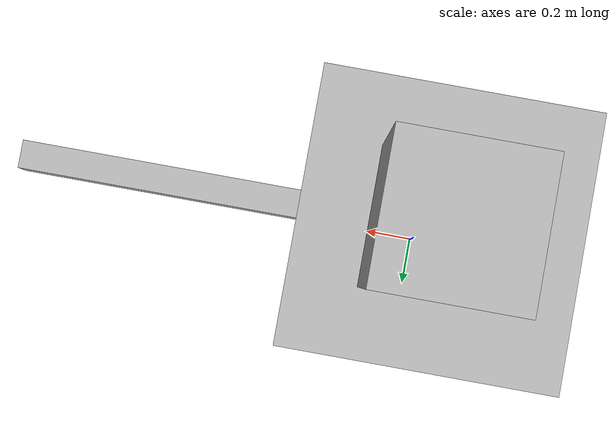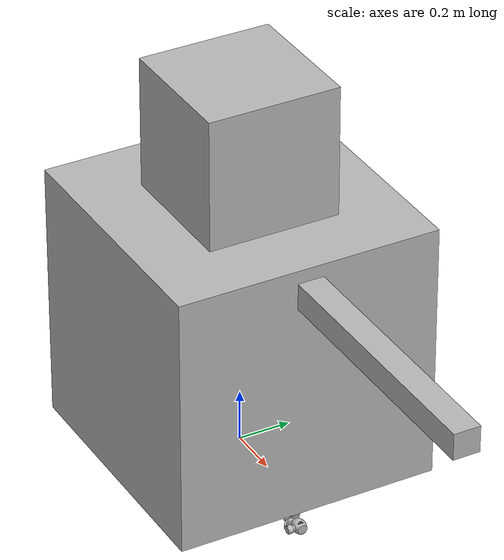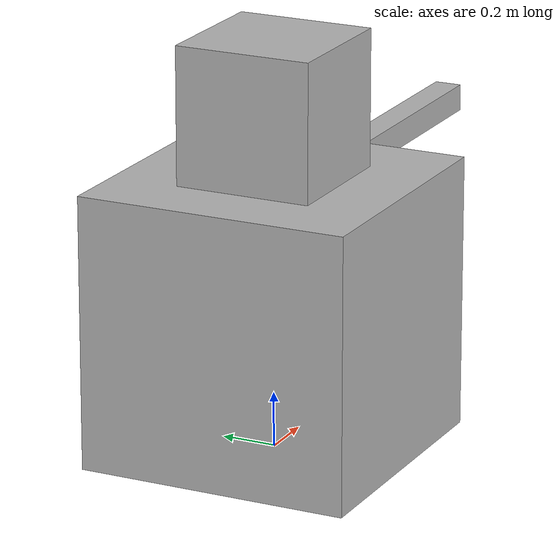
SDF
<?xml version='1.0'?>
<sdf version="1.7">
  <model name="stand_with_gimbal">
    <include>
      <uri>model://stand</uri>
    </include>
    <include>
      <pose relative_to="stand::link3">0.4 0 -0.05 0 0 1.575</pose>
      <uri>model://my_gimbal_3d</uri>
    </include>
    <joint name="gimbal2stand" type="fixed">
      <parent>stand::link3</parent>
      <child>my_gimbal_3d::base_link</child>
    </joint>
  </model>
  </sdf>

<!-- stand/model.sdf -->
<sdf version="1.7">
  <model name="stand">
    <plugin name='set_joint_position_plugin' filename='libJointControlDemoPlugin.so'>
      <joint>roll</joint>
      <control>
        <p>30</p>
        <i>3</i>
        <d>15</d>
      </control>
    </plugin>
    <frame name="base">
      <pose>0 0 0 0 0 0</pose>
    </frame>
    <link name="link">
      <pose relative_to="base">0 0 0.5 0 0 0</pose>
      <inertial>
        <mass>100.0</mass>

      </inertial>
      <collision name="collision">
        <geometry>
          <box>
            <size>1 1 1</size>
          </box>
        </geometry>
      </collision>
      <visual name="visual">
        <geometry>
          <box>
            <size>1 1 1</size>
          </box>
        </geometry>
      </visual>
    </link>
    <frame name="base_tip" attached_to="base">
      <pose relative_to="base">0 0 1 0 0 0</pose>
    </frame>
    <joint type="revolute" name="simple">
      <pose relative_to="base_tip">0 0 0 0 0 0</pose>
      <child>link2</child>
      <parent>link</parent>
      <axis>
        <xyz>0 0 1</xyz>
      </axis>
    </joint>

    <link name="link2">
      <pose relative_to="base_tip">0 0 0.25 0 0 0</pose>
      <collision name="collision">
        <geometry>
          <box>
            <size>0.5 0.5 0.5</size>
          </box>
        </geometry>
      </collision>
      <visual name="visual">
        <geometry>
          <box>
            <size>0.5 0.5 0.5</size>
          </box>
        </geometry>
        <material>
          <script>
            <uri>model://stand/materials/scripts</uri>
            <uri>model://stand/materials/textures</uri>
            <name>arrow</name>
          </script>
        </material>
      </visual>
    </link>

    <link name="link3">
      <inertial>
        <mass>1</mass>

      </inertial>
      <pose relative_to="base_tip">1 0 -0.1 0 0 0</pose>
      <collision name="collision">
        <geometry>
          <box>
            <size>1 0.1 0.1</size>
          </box>
        </geometry>
      </collision>
      <visual name="visual">
        <geometry>
          <box>
            <size>1 0.1 0.1</size>
          </box>
        </geometry>
      </visual>
      <sensor name="roll_imu" type="imu">
        <pose>0 0 0 0 0 1.575</pose>
        <always_on>1</always_on>
      </sensor>
    </link>
    <joint type="revolute" name="roll">
      <pose relative_to="base_tip">0.5 0 -0.1 0 0 0</pose>
      <child>link3</child>
      <parent>link</parent>

      <axis>
        <xyz>1 0 0</xyz>

        <use_parent_model_frame>1</use_parent_model_frame>
        <limit>
          <lower>-3.14159265</lower>
          <upper>3.14159265</upper>
          <effort>10</effort>
          <velocity>-1</velocity>
        </limit>
      </axis>
    </joint>
  </model>

</sdf>

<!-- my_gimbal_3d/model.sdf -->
<sdf version='1.6'>
  <model name='my_gimbal_3d'>
    <link name='base_link'>
      <inertial>
        <pose>-0 0 -0.004539 0 -0 0</pose>
        <mass>0.078458</mass>
        <inertia>
          <ixx>3.1364e-05</ixx>
          <ixy>2.356e-21</ixy>
          <ixz>1.6956e-21</ixz>
          <iyy>3.1364e-05</iyy>
          <iyz>1.4274e-21</iyz>
          <izz>5.8255e-05</izz>
        </inertia>
      </inertial>
      <collision name='base_link_collision'>
        <pose>0 0 0 0 -0 0</pose>
        <geometry>
          <mesh>
            <scale>1 1 1</scale>
            <uri>model://my_gimbal_3d/meshes/base_link.STL</uri>
          </mesh>
        </geometry>
      </collision>
      <visual name='base_link_visual'>
        <pose>0 0 0 0 -0 0</pose>
        <geometry>
          <mesh>
            <scale>1 1 1</scale>
            <uri>model://my_gimbal_3d/meshes/base_link.STL</uri>
          </mesh>
        </geometry>
      </visual>
    </link>
    <joint name='pan' type='revolute'>
      <pose relative_to='base_link'>0 0 -0.005 1.5708 -0 0</pose>
      <parent>base_link</parent>
      <child>1st_link</child>
      <axis>
        <xyz>0 1 0</xyz>
        <limit>
          <lower>-1.575</lower>
          <upper>1.575</upper>
        </limit>
        <dynamics>
          <damping>0.2</damping>
          <friction>0.00</friction>
          <spring_reference>0</spring_reference>
          <spring_stiffness>0</spring_stiffness>
        </dynamics>
      </axis>
    </joint>
    <link name='1st_link'>
      <pose relative_to='pan'>0 0 0 0 -0 0</pose>
      <inertial>
        <pose>0 -0.036892 -0.016252 0 -0 0</pose>
        <mass>0.14774</mass>
        <inertia>
          <ixx>0.00016878</ixx>
          <ixy>2.5966e-21</ixy>
          <ixz>2.3862e-21</ixz>
          <iyy>7.3688e-05</iyy>
          <iyz>-6.9072e-05</iyz>
          <izz>0.00011514</izz>
        </inertia>
      </inertial>
      <collision name='1st_link_collision'>
        <pose>0 0 0 0 -0 0</pose>
        <geometry>
          <mesh>
            <scale>1 1 1</scale>
            <uri>model://my_gimbal_3d/meshes/1st_link.STL</uri>
          </mesh>
        </geometry>
      </collision>
      <visual name='1st_link_visual'>
        <pose>0 0 0 0 -0 0</pose>
        <geometry>
          <mesh>
            <scale>1 1 1</scale>
            <uri>model://my_gimbal_3d/meshes/1st_link.STL</uri>
          </mesh>
        </geometry>
      </visual>
    </link>
    <joint name='roll' type='revolute'>
      <pose relative_to='1st_link'>0 -0.07165 0 0 0 0</pose>
      <parent>1st_link</parent>
      <child>2nd_link</child>
      <axis>
        <xyz>0 0 1</xyz>
        <limit>
          <lower>-0.7854</lower>
          <upper>0.7854</upper>
        </limit>
        <dynamics>
          <damping>0.001</damping>
          <friction>0.00</friction>
          <spring_reference>0</spring_reference>
          <spring_stiffness>0</spring_stiffness>
        </dynamics>
      </axis>
    </joint>
    <link name='2nd_link'>
      <pose relative_to='roll'>0 0 0 0 -0 0</pose>
      <inertial>
        <pose>-0.022016 0 0.001912 0 -0 0</pose>
        <mass>0.065317</mass>
        <inertia>
          <ixx>2.614e-05</ixx>
          <ixy>1.2607e-22</ixy>
          <ixz>1.2241e-05</ixz>
          <iyy>3.501e-05</iyy>
          <iyz>1.3965e-22</iyz>
          <izz>1.5317e-05</izz>
        </inertia>
      </inertial>
      <collision name='2nd_link_collision'>
        <pose>0 0 0 0 -0 0</pose>
        <geometry>
          <mesh>
            <scale>1 1 1</scale>
            <uri>model://my_gimbal_3d/meshes/2nd_link.STL</uri>
          </mesh>
        </geometry>
      </collision>
      <visual name='2nd_link_visual'>
        <pose>0 0 0 0 -0 0</pose>
        <geometry>
          <mesh>
            <scale>1 1 1</scale>
            <uri>model://my_gimbal_3d/meshes/2nd_link.STL</uri>
          </mesh>
        </geometry>
      </visual>
      <sensor name="roll_camera_imu" type="imu">
        <pose relative_to="2nd_link">0 0 0 -1.575 -1.575 0</pose>
        <always_on>1</always_on>
      </sensor>
    </link>
    <joint name='tilt' type='revolute'>
      <pose relative_to='2nd_link'>0 0 0.01595 0 0 0</pose>
      <parent>2nd_link</parent>
      <child>camera_link</child>
      <axis>
        <xyz>1 0 0</xyz>
        <limit>
          <lower>-0.7854</lower>
          <upper>2.3562</upper>
        </limit>
        <dynamics>
          <damping>0.001</damping>
          <friction>0.00</friction>
          <spring_reference>0</spring_reference>
          <spring_stiffness>0</spring_stiffness>
        </dynamics>
      </axis>
    </joint>
    <link name='camera_link'>
      <pose relative_to='tilt'>0 0 0 0 0 0</pose>
      <inertial>
        <pose>0.009192 -0.000788 -0.001434 0 0 0</pose>
        <mass>0.23523</mass>
        <inertia>
          <ixx>7.527e-05</ixx>
          <ixy>6.9626e-07</ixy>
          <ixz>6.3053e-07</ixz>
          <iyy>8.0649e-05</iyy>
          <iyz>7.1378e-07</iyz>
          <izz>6.9991e-05</izz>
        </inertia>
      </inertial>
      <collision name='camera_collision'>
        <pose>0 0 0 0 -0 0</pose>
        <geometry>
          <mesh>
            <scale>1 1 1</scale>
            <uri>model://my_gimbal_3d/meshes/camera.STL</uri>
          </mesh>
        </geometry>
      </collision>
      <visual name='camera_visual'>
        <pose>0 0 0 0 -0 0</pose>
        <geometry>
          <mesh>
            <scale>1 1 1</scale>
            <uri>model://my_gimbal_3d/meshes/camera.STL</uri>
          </mesh>
        </geometry>
      </visual>
      <sensor name="camera" type="camera">
        <pose>0.01 0 0 -1.575 -1.575 0</pose>
        <camera>
          <horizontal_fov>2.0</horizontal_fov>
          <image>
            <width>640</width>
            <height>480</height>
          </image>
          <clip>
            <near>0.05</near>
            <far>15000</far>
          </clip>
        </camera>
        <always_on>1</always_on>
        <update_rate>10</update_rate>
        <visualize>1</visualize>
      </sensor>
      <sensor name="pitch_camera_imu" type="imu">
        <pose relative_to="camera_link">0 0 0 -1.575 0 0</pose>
        <always_on>1</always_on>
      </sensor>
    </link>
    <plugin name="gimbal_control" filename="libGimbalControllerPlugin.so" />
  </model>
</sdf>
